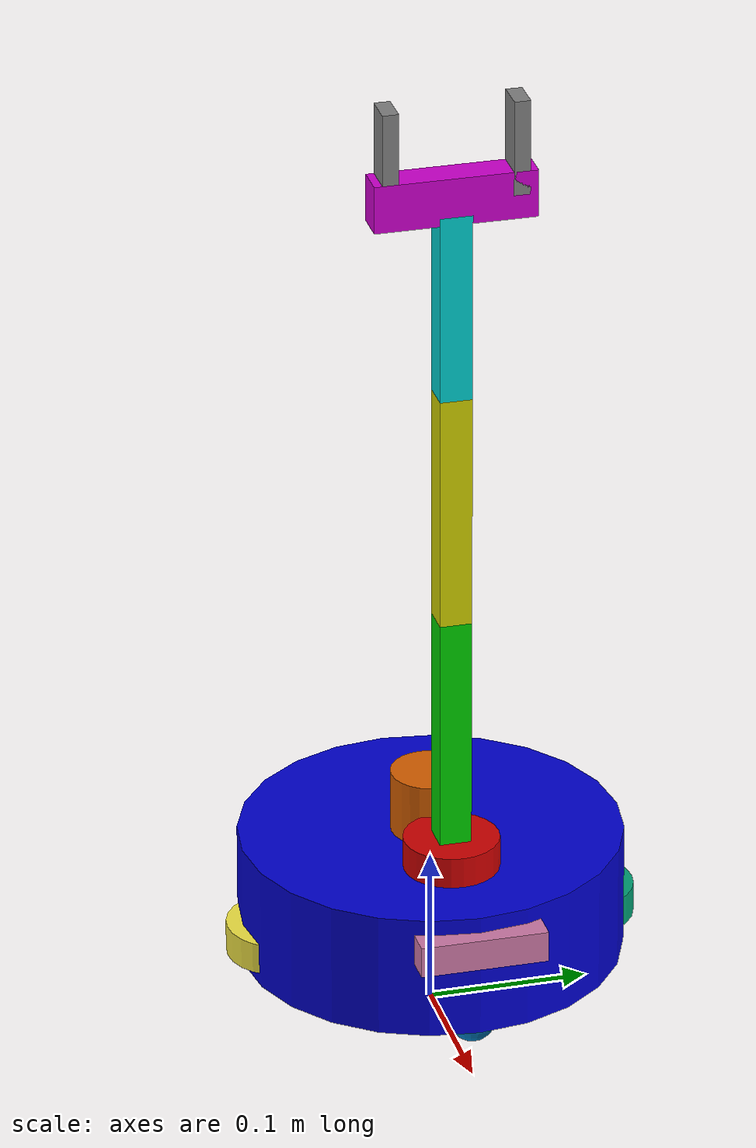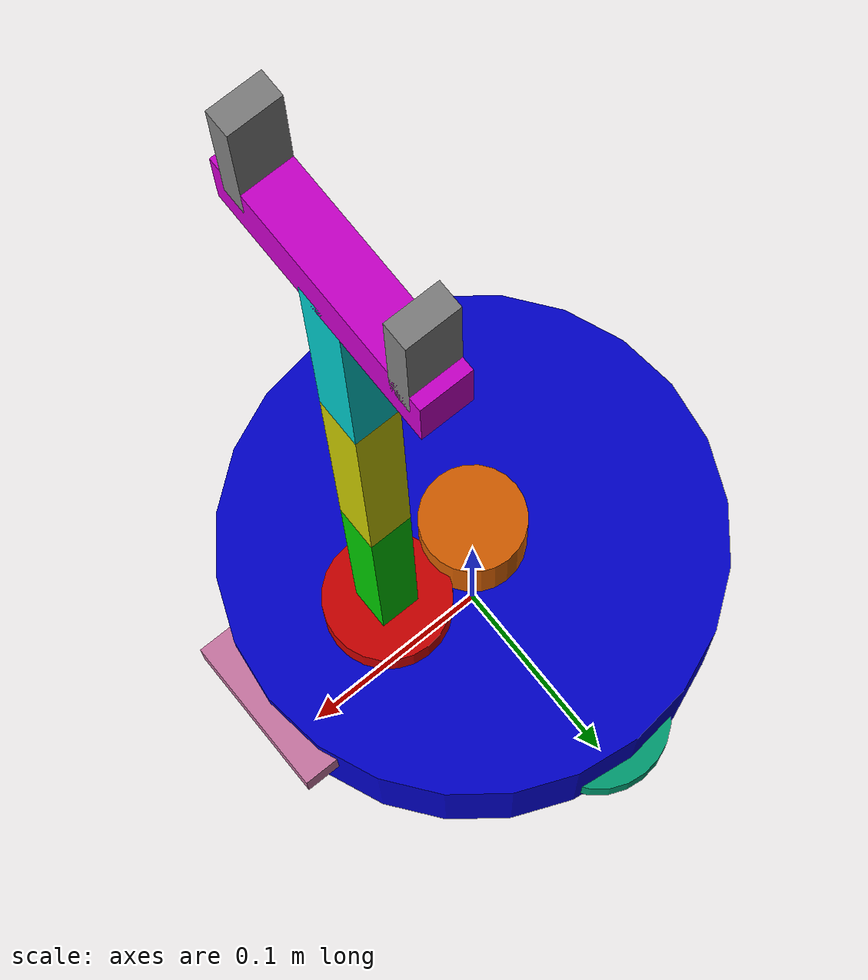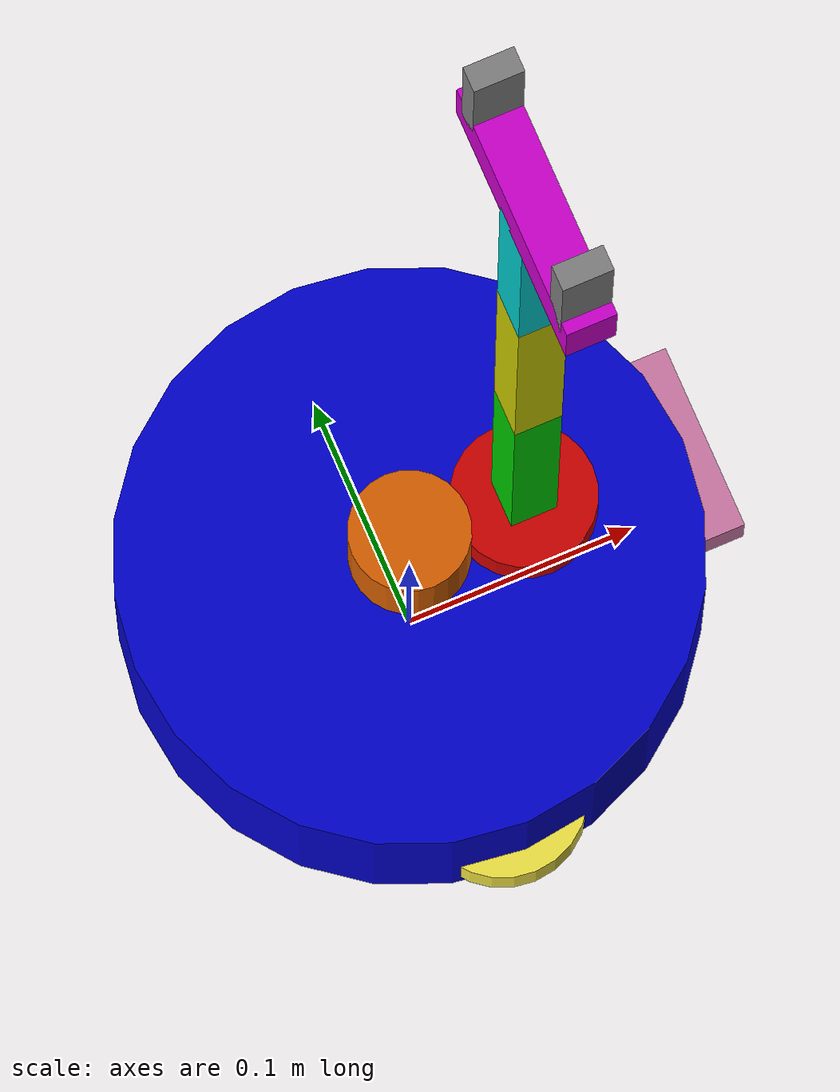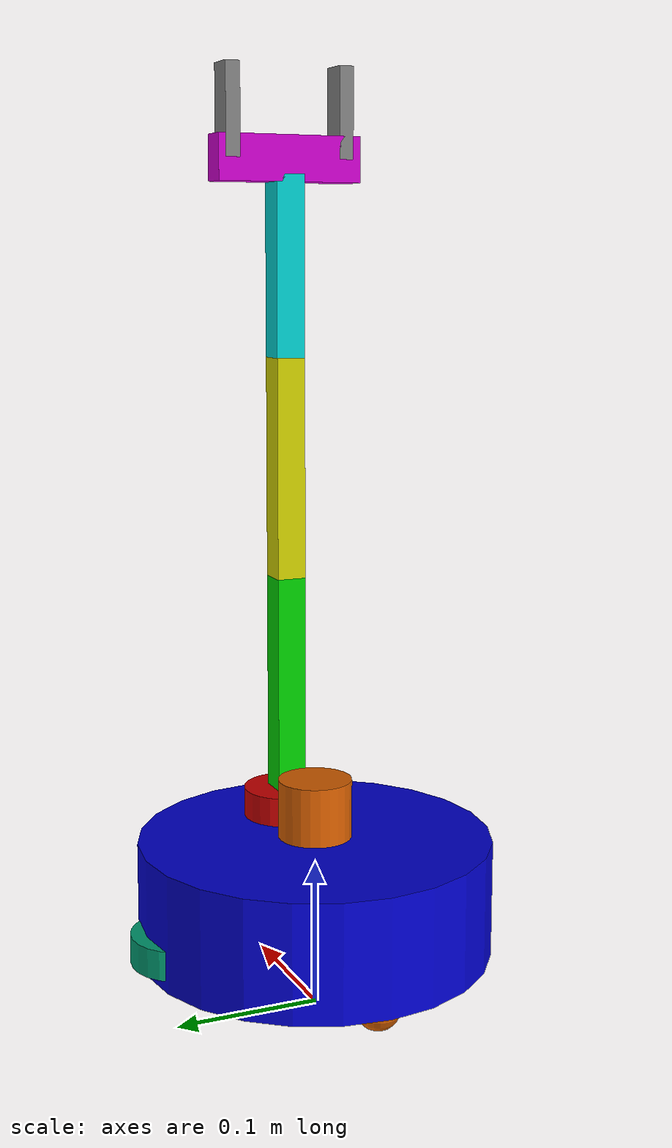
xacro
<?xml version="1.0"?>
<robot xmlns:xacro="http://www.ros.org/wiki/xacro" name="my_mobile_manipulator">
    <xacro:arg name="initial_positions_file" default="initial_positions.yaml" />

    <!-- Import my_mobile_manipulator urdf file -->
    <xacro:include filename="$(find final_assignment_pkg)/urdf/robot.urdf" />

    <!-- Import control_xacro -->
    <xacro:include filename="my_mobile_manipulator.ros2_control.xacro" />

    <xacro:my_mobile_manipulator_ros2_control name="FakeSystem" initial_positions_file="$(arg initial_positions_file)"/>

</robot>

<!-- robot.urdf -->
<robot name="my_mobile_manipulator">

  <link name="base_footprint"/>

  <joint name="base_joint" type="fixed">
    <parent link="base_footprint"/>
    <child link="base_link"/>
    <origin rpy="0 0 0" xyz="0 0 0.04"/>
  </joint>

  <link name="base_link">
    <visual>
      <origin rpy="0 0 0" xyz="0 0 0.04"/>
      <geometry>
        <cylinder length="0.08" radius="0.12"/>
      </geometry>
      <material name="blue">
        <color rgba="0 0 0.8 1"/>
      </material>
    </visual>
    <collision>
      <origin rpy="0 0 0" xyz="0 0 0.04"/>
      <geometry>
        <cylinder length="0.08" radius="0.12"/>
      </geometry>
    </collision>
  </link>

  <link name="left_wheel">
    <visual>
      <geometry><cylinder length="0.02" radius="0.035"/></geometry>
    </visual>
    <collision>
      <geometry><cylinder length="0.02" radius="0.035"/></geometry>
    </collision>
  </link>

  <joint name="left_wheel_joint" type="continuous">
    <parent link="base_link"/>
    <child link="left_wheel"/>
    <origin rpy="0 0 0" xyz="0 0.095 0.0175"/>
    <axis xyz="0 1 0"/>
  </joint>

  <link name="right_wheel">
    <visual>
      <geometry><cylinder length="0.02" radius="0.035"/></geometry>
    </visual>
    <collision>
      <geometry><cylinder length="0.02" radius="0.035"/></geometry>
    </collision>
  </link>

  <joint name="right_wheel_joint" type="continuous">
    <parent link="base_link"/>
    <child link="right_wheel"/>
    <origin rpy="0 0 0" xyz="0 -0.095 0.0175"/>
    <axis xyz="0 1 0"/>
  </joint>

  <link name="front_caster">
    <visual><geometry><sphere radius="0.015"/></geometry></visual>
    <collision><geometry><sphere radius="0.015"/></geometry></collision>
  </link>
  <joint name="front_caster_joint" type="fixed">
    <parent link="base_link"/>
    <child link="front_caster"/>
    <origin rpy="0 0 0" xyz="0.1 0 0"/>
  </joint>

  <link name="back_caster">
    <visual><geometry><sphere radius="0.015"/></geometry></visual>
    <collision><geometry><sphere radius="0.015"/></geometry></collision>
  </link>
  <joint name="back_caster_joint" type="fixed">
    <parent link="base_link"/>
    <child link="back_caster"/>
    <origin rpy="0 0 0" xyz="-0.1 0 0"/>
  </joint>

  <link name="arm_base_link">
    <visual>
      <geometry><cylinder length="0.04" radius="0.03"/></geometry>
      <material name="red"><color rgba="0.8 0 0 1"/></material>
    </visual>
    <collision>
      <geometry><cylinder length="0.04" radius="0.03"/></geometry>
    </collision>
  </link>

  <joint name="arm_joint_1" type="revolute">
    <parent link="base_link"/>
    <child link="arm_base_link"/>
    <origin rpy="0 0 0" xyz="0.05 0 0.08"/>
    <axis xyz="0 0 1"/>
    <limit effort="100.0" lower="-1.57" upper="1.57" velocity="1.0"/>
  </joint>

  <link name="arm_link_1">
    <visual>
      <origin rpy="0 0 0" xyz="0 0 0.075"/>
      <geometry><box size="0.02 0.02 0.15"/></geometry>
      <material name="green"><color rgba="0 0.8 0 1"/></material>
    </visual>
    <collision>
      <origin rpy="0 0 0" xyz="0 0 0.075"/>
      <geometry><box size="0.02 0.02 0.15"/></geometry>
    </collision>
  </link>

  <joint name="arm_joint_2" type="revolute">
    <parent link="arm_base_link"/>
    <child link="arm_link_1"/>
    <origin rpy="0 0 0" xyz="0 0 0.02"/>
    <axis xyz="0 1 0"/>
    <limit effort="100.0" lower="-1.57" upper="1.57" velocity="1.0"/>
  </joint>

  <link name="arm_link_2">
    <visual>
      <origin rpy="0 0 0" xyz="0 0 0.075"/>
      <geometry><box size="0.02 0.02 0.15"/></geometry>
      <material name="yellow"><color rgba="0.8 0.8 0 1"/></material>
    </visual>
    <collision>
      <origin rpy="0 0 0" xyz="0 0 0.075"/>
      <geometry><box size="0.02 0.02 0.15"/></geometry>
    </collision>
  </link>

  <joint name="arm_joint_3" type="revolute">
    <parent link="arm_link_1"/>
    <child link="arm_link_2"/>
    <origin rpy="0 0 0" xyz="0 0 0.15"/>
    <axis xyz="0 1 0"/>
    <limit effort="100.0" lower="-2.0" upper="2.0" velocity="1.0"/>
  </joint>

  <link name="arm_link_3">
    <visual>
      <origin rpy="0 0 0" xyz="0 0 0.06"/>
      <geometry><box size="0.02 0.02 0.12"/></geometry>
      <material name="cyan"><color rgba="0 0.8 0.8 1"/></material>
    </visual>
    <collision>
      <origin rpy="0 0 0" xyz="0 0 0.06"/>
      <geometry><box size="0.02 0.02 0.12"/></geometry>
    </collision>
  </link>

  <joint name="arm_joint_4" type="revolute">
    <parent link="arm_link_2"/>
    <child link="arm_link_3"/>
    <origin rpy="0 0 0" xyz="0 0 0.15"/>
    <axis xyz="0 1 0"/>
    <limit effort="100.0" lower="-1.57" upper="1.57" velocity="1.0"/>
  </joint>

  <link name="gripper_base_link">
    <visual>
      <geometry><box size="0.02 0.10 0.03"/></geometry>
      <material name="magenta"><color rgba="0.8 0 0.8 1"/></material>
    </visual>
    <collision>
      <geometry><box size="0.02 0.10 0.03"/></geometry>
    </collision>
  </link>

  <joint name="gripper_base_joint" type="fixed">
    <parent link="arm_link_3"/>
    <child link="gripper_base_link"/>
    <origin rpy="0 0 0" xyz="0 0 0.13"/>
  </joint>

  <link name="gripper_left_finger">
    <visual>
      <origin rpy="0 0 0" xyz="0 0 0.03"/>
      <geometry><box size="0.02 0.01 0.06"/></geometry>
      <material name="grey"><color rgba="0.5 0.5 0.5 1"/></material>
    </visual>
    <collision>
      <origin rpy="0 0 0" xyz="0 0 0.03"/>
      <geometry><box size="0.02 0.01 0.06"/></geometry>
    </collision>
  </link>

  <joint name="finger_joint_1" type="prismatic">
    <parent link="gripper_base_link"/>
    <child link="gripper_left_finger"/>
    <origin rpy="0 0 0" xyz="0 0.04 0"/>
    <axis xyz="0 1 0"/>
    <limit effort="10.0" lower="-0.04" upper="0.0" velocity="0.5"/>
  </joint>

  <link name="gripper_right_finger">
    <visual>
      <origin rpy="0 0 0" xyz="0 0 0.03"/>
      <geometry><box size="0.02 0.01 0.06"/></geometry>
      <material name="grey"><color rgba="0.5 0.5 0.5 1"/></material>
    </visual>
    <collision>
      <origin rpy="0 0 0" xyz="0 0 0.03"/>
      <geometry><box size="0.02 0.01 0.06"/></geometry>
    </collision>
  </link>

  <joint name="finger_joint_2" type="prismatic">
    <parent link="gripper_base_link"/>
    <child link="gripper_right_finger"/>
    <origin rpy="0 0 0" xyz="0 -0.04 0"/>
    <axis xyz="0 1 0"/>
    <limit effort="10.0" lower="0.0" upper="0.04" velocity="0.5"/>
  </joint>

  <link name="laser_link">
    <visual><geometry><cylinder length="0.04" radius="0.025"/></geometry></visual>
    <collision><geometry><cylinder length="0.04" radius="0.025"/></geometry></collision>
  </link>
  <joint name="laser_joint" type="fixed"><parent link="base_link"/><child link="laser_link"/><origin xyz="0 0 0.1"/></joint>

  <link name="camera_link">
    <visual><geometry><box size="0.02 0.08 0.02"/></geometry></visual>
    <collision><geometry><box size="0.02 0.08 0.02"/></geometry></collision>
  </link>
  <joint name="camera_joint" type="fixed"><parent link="base_link"/><child link="camera_link"/><origin xyz="0.12 0 0.06"/></joint>

</robot>
